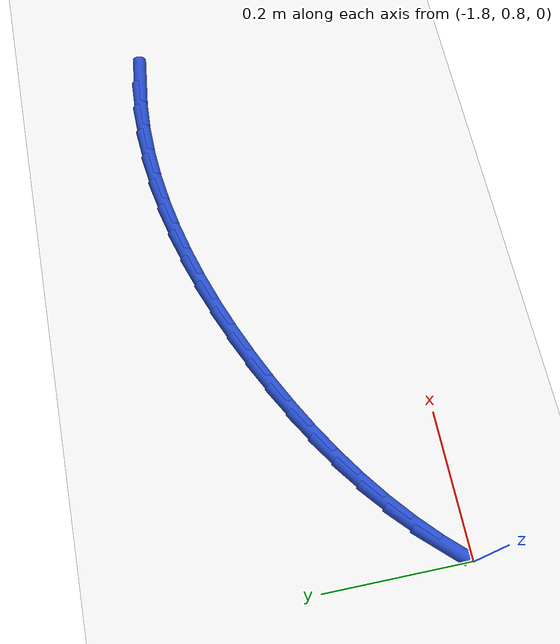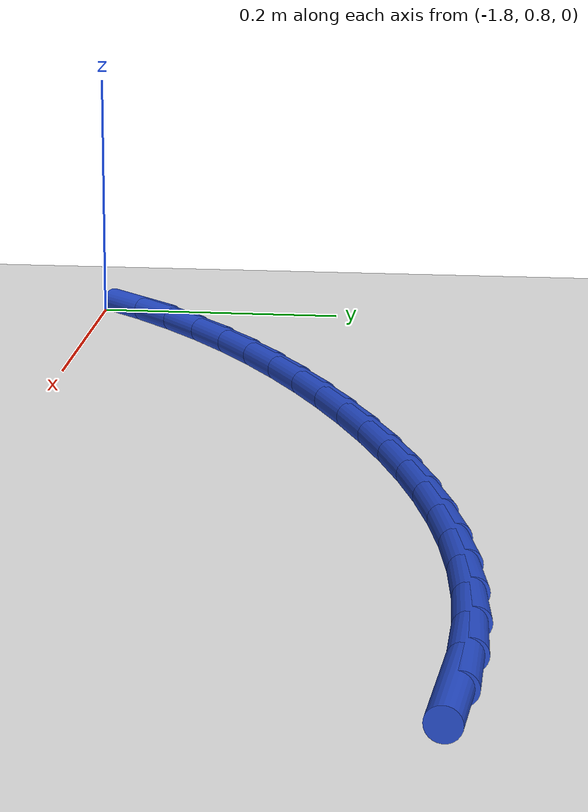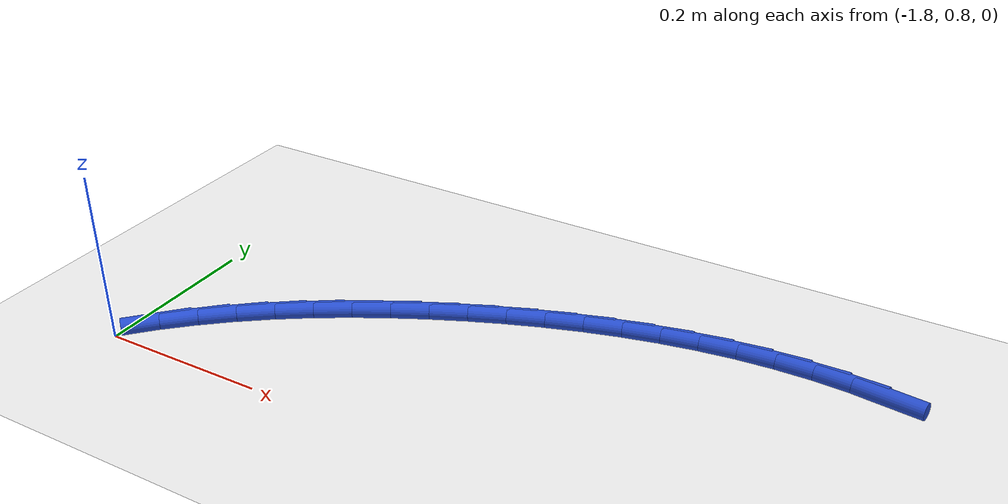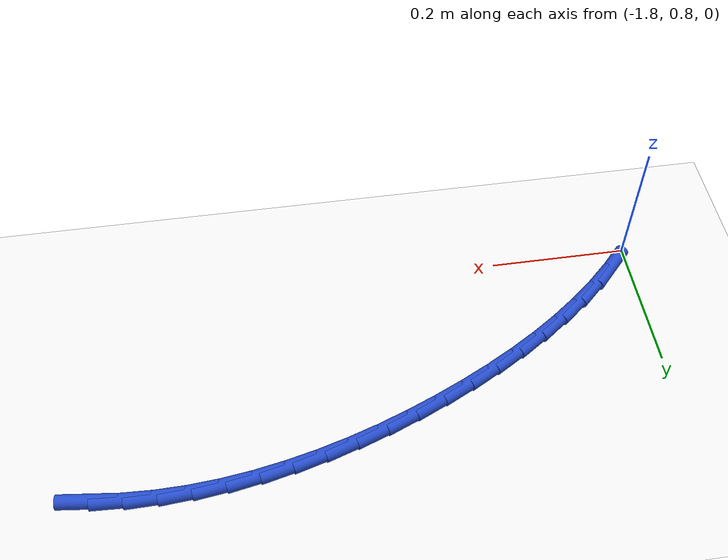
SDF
<sdf version="1.6">
 <world name="default">
  <model name="ground_plane">
   <static>1</static>
   <link name="link">
    <collision name="collision">
     <geometry><plane><normal>0 0 1</normal><size>100 100</size></plane></geometry>
     <surface><friction><ode><mu>100</mu><mu2>50</mu2></ode></friction></surface>
    </collision>
    <visual name="visual">
     <cast_shadows>0</cast_shadows>
     <geometry><plane><normal>0 0 1</normal><size>100 100</size></plane></geometry>
     <material>
      <script><uri>file://media/materials/scripts/gazebo.material</uri><name>Gazebo/WhiteGlow</name></script>
     </material>
    </visual>
   </link>
  </model>
  <model name="line">
   <link name="link_39">
    <pose>-1.0039662947822876 1.1122747996015632 0.01 0 1.57 -0.1161353624137754</pose>
    <collision name="collision">
     <geometry><cylinder><radius>0.01</radius><length>0.08</length></cylinder></geometry>
    </collision>
    <visual name="visual">
     <material>
      <script><name>Gazebo/Blue</name><uri>file://media/materials/scripts/gazebo.material</uri></script>
     </material>
     <geometry><cylinder><radius>0.01</radius><length>0.08</length></cylinder></geometry>
    </visual>
   </link>
   <link name="link_40">
    <pose>-1.0465375420974667 1.1172411748058297 0.01 0 1.57 -0.046805380459156457</pose>
    <collision name="collision">
     <geometry><cylinder><radius>0.01</radius><length>0.08</length></cylinder></geometry>
    </collision>
    <visual name="visual">
     <material>
      <script><name>Gazebo/Blue</name><uri>file://media/materials/scripts/gazebo.material</uri></script>
     </material>
     <geometry><cylinder><radius>0.01</radius><length>0.08</length></cylinder></geometry>
    </visual>
   </link>
   <link name="link_41">
    <pose>-1.0894936090137264 1.1192532193667835 0.01 0 1.57 0.018245535377048705</pose>
    <collision name="collision">
     <geometry><cylinder><radius>0.01</radius><length>0.08</length></cylinder></geometry>
    </collision>
    <visual name="visual">
     <material>
      <script><name>Gazebo/Blue</name><uri>file://media/materials/scripts/gazebo.material</uri></script>
     </material>
     <geometry><cylinder><radius>0.01</radius><length>0.08</length></cylinder></geometry>
    </visual>
   </link>
   <link name="link_42">
    <pose>-1.1327259085297152 1.1184643353748789 0.01 0 1.57 0.07901521152322846</pose>
    <collision name="collision">
     <geometry><cylinder><radius>0.01</radius><length>0.08</length></cylinder></geometry>
    </collision>
    <visual name="visual">
     <material>
      <script><name>Gazebo/Blue</name><uri>file://media/materials/scripts/gazebo.material</uri></script>
     </material>
     <geometry><cylinder><radius>0.01</radius><length>0.08</length></cylinder></geometry>
    </visual>
   </link>
   <link name="link_43">
    <pose>-1.1761258536440833 1.1150279249205708 0.01 0 1.57 0.13562500944360437</pose>
    <collision name="collision">
     <geometry><cylinder><radius>0.01</radius><length>0.08</length></cylinder></geometry>
    </collision>
    <visual name="visual">
     <material>
      <script><name>Gazebo/Blue</name><uri>file://media/materials/scripts/gazebo.material</uri></script>
     </material>
     <geometry><cylinder><radius>0.01</radius><length>0.08</length></cylinder></geometry>
    </visual>
   </link>
   <link name="link_44">
    <pose>-1.2195848573554806 1.1090973900943142 0.01 0 1.57 0.18828342869265816</pose>
    <collision name="collision">
     <geometry><cylinder><radius>0.01</radius><length>0.08</length></cylinder></geometry>
    </collision>
    <visual name="visual">
     <material>
      <script><name>Gazebo/Blue</name><uri>file://media/materials/scripts/gazebo.material</uri></script>
     </material>
     <geometry><cylinder><radius>0.01</radius><length>0.08</length></cylinder></geometry>
    </visual>
   </link>
   <link name="link_45">
    <pose>-1.2629943326625563 1.100826132986564 0.01 0 1.57 0.23725495494865165</pose>
    <collision name="collision">
     <geometry><cylinder><radius>0.01</radius><length>0.08</length></cylinder></geometry>
    </collision>
    <visual name="visual">
     <material>
      <script><name>Gazebo/Blue</name><uri>file://media/materials/scripts/gazebo.material</uri></script>
     </material>
     <geometry><cylinder><radius>0.01</radius><length>0.08</length></cylinder></geometry>
    </visual>
   </link>
   <link name="link_46">
    <pose>-1.3062456925639614 1.090367555687776 0.01 0 1.57 0.2828355421100429</pose>
    <collision name="collision">
     <geometry><cylinder><radius>0.01</radius><length>0.08</length></cylinder></geometry>
    </collision>
    <visual name="visual">
     <material>
      <script><name>Gazebo/Blue</name><uri>file://media/materials/scripts/gazebo.material</uri></script>
     </material>
     <geometry><cylinder><radius>0.01</radius><length>0.08</length></cylinder></geometry>
    </visual>
   </link>
   <link name="link_47">
    <pose>-1.3492303500583431 1.0778750602884037 0.01 0 1.57 0.3253346610172963</pose>
    <collision name="collision">
     <geometry><cylinder><radius>0.01</radius><length>0.08</length></cylinder></geometry>
    </collision>
    <visual name="visual">
     <material>
      <script><name>Gazebo/Blue</name><uri>file://media/materials/scripts/gazebo.material</uri></script>
     </material>
     <geometry><cylinder><radius>0.01</radius><length>0.08</length></cylinder></geometry>
    </visual>
   </link>
   <link name="link_48">
    <pose>-1.3918397181443536 1.0635020488789035 0.01 0 1.57 0.36506308783761415</pose>
    <collision name="collision">
     <geometry><cylinder><radius>0.01</radius><length>0.08</length></cylinder></geometry>
    </collision>
    <visual name="visual">
     <material>
      <script><name>Gazebo/Blue</name><uri>file://media/materials/scripts/gazebo.material</uri></script>
     </material>
     <geometry><cylinder><radius>0.01</radius><length>0.08</length></cylinder></geometry>
    </visual>
   </link>
   <link name="link_49">
    <pose>-1.433965209820641 1.0474019235497294 0.01 0 1.57 0.40232534033141276</pose>
    <collision name="collision">
     <geometry><cylinder><radius>0.01</radius><length>0.08</length></cylinder></geometry>
    </collision>
    <visual name="visual">
     <material>
      <script><name>Gazebo/Blue</name><uri>file://media/materials/scripts/gazebo.material</uri></script>
     </material>
     <geometry><cylinder><radius>0.01</radius><length>0.08</length></cylinder></geometry>
    </visual>
   </link>
   <link name="link_50">
    <pose>-1.4754982380858557 1.0297280863913367 0.01 0 1.57 0.43742130008491203</pose>
    <collision name="collision">
     <geometry><cylinder><radius>0.01</radius><length>0.08</length></cylinder></geometry>
    </collision>
    <visual name="visual">
     <material>
      <script><name>Gazebo/Blue</name><uri>file://media/materials/scripts/gazebo.material</uri></script>
     </material>
     <geometry><cylinder><radius>0.01</radius><length>0.08</length></cylinder></geometry>
    </visual>
   </link>
   <link name="link_51">
    <pose>-1.5163301417807962 1.0106336953747097 0.01 0 1.57 0.4720263052613336</pose>
    <collision name="collision">
     <geometry><cylinder><radius>0.01</radius><length>0.08</length></cylinder></geometry>
    </collision>
    <visual name="visual">
     <material>
      <script><name>Gazebo/Blue</name><uri>file://media/materials/scripts/gazebo.material</uri></script>
     </material>
     <geometry><cylinder><radius>0.01</radius><length>0.08</length></cylinder></geometry>
    </visual>
   </link>
   <link name="link_52">
    <pose>-1.556333794640535 0.9902111233785597 0.01 0 1.57 0.5096207646614486</pose>
    <collision name="collision">
     <geometry><cylinder><radius>0.01</radius><length>0.08</length></cylinder></geometry>
    </collision>
    <visual name="visual">
     <material>
      <script><name>Gazebo/Blue</name><uri>file://media/materials/scripts/gazebo.material</uri></script>
     </material>
     <geometry><cylinder><radius>0.01</radius><length>0.08</length></cylinder></geometry>
    </visual>
   </link>
   <link name="link_53">
    <pose>-1.5953394356988375 0.9684123945453553 0.01 0 1.57 0.5509156720878879</pose>
    <collision name="collision">
     <geometry><cylinder><radius>0.01</radius><length>0.08</length></cylinder></geometry>
    </collision>
    <visual name="visual">
     <material>
      <script><name>Gazebo/Blue</name><uri>file://media/materials/scripts/gazebo.material</uri></script>
     </material>
     <geometry><cylinder><radius>0.01</radius><length>0.08</length></cylinder></geometry>
    </visual>
   </link>
   <link name="link_54">
    <pose>-1.6331713058105042 0.9451697876737174 0.01 0 1.57 0.5961678447784188</pose>
    <collision name="collision">
     <geometry><cylinder><radius>0.01</radius><length>0.08</length></cylinder></geometry>
    </collision>
    <visual name="visual">
     <material>
      <script><name>Gazebo/Blue</name><uri>file://media/materials/scripts/gazebo.material</uri></script>
     </material>
     <geometry><cylinder><radius>0.01</radius><length>0.08</length></cylinder></geometry>
    </visual>
   </link>
   <link name="link_55">
    <pose>-1.6696536458303373 0.9204155815622662 0.01 0 1.57 0.6456167042172013</pose>
    <collision name="collision">
     <geometry><cylinder><radius>0.01</radius><length>0.08</length></cylinder></geometry>
    </collision>
    <visual name="visual">
     <material>
      <script><name>Gazebo/Blue</name><uri>file://media/materials/scripts/gazebo.material</uri></script>
     </material>
     <geometry><cylinder><radius>0.01</radius><length>0.08</length></cylinder></geometry>
    </visual>
   </link>
   <link name="link_56">
    <pose>-1.7046106966131378 0.8940820550096213 0.01 0 1.57 0.6994619111537682</pose>
    <collision name="collision">
     <geometry><cylinder><radius>0.01</radius><length>0.08</length></cylinder></geometry>
    </collision>
    <visual name="visual">
     <material>
      <script><name>Gazebo/Blue</name><uri>file://media/materials/scripts/gazebo.material</uri></script>
     </material>
     <geometry><cylinder><radius>0.01</radius><length>0.08</length></cylinder></geometry>
    </visual>
   </link>
   <link name="link_57">
    <pose>-1.7378666990137064 0.8661014868144038 0.01 0 1.57 0.7578345049695046</pose>
    <collision name="collision">
     <geometry><cylinder><radius>0.01</radius><length>0.08</length></cylinder></geometry>
    </collision>
    <visual name="visual">
     <material>
      <script><name>Gazebo/Blue</name><uri>file://media/materials/scripts/gazebo.material</uri></script>
     </material>
     <geometry><cylinder><radius>0.01</radius><length>0.08</length></cylinder></geometry>
    </visual>
   </link>
   <link name="link_58">
    <pose>-1.7692458938868452 0.8364061557752331 0.01 0 1.57 0.8207621914939826</pose>
    <collision name="collision">
     <geometry><cylinder><radius>0.01</radius><length>0.08</length></cylinder></geometry>
    </collision>
    <visual name="visual">
     <material>
      <script><name>Gazebo/Blue</name><uri>file://media/materials/scripts/gazebo.material</uri></script>
     </material>
     <geometry><cylinder><radius>0.01</radius><length>0.08</length></cylinder></geometry>
    </visual>
   </link>
  </model>
 </world>
</sdf>
